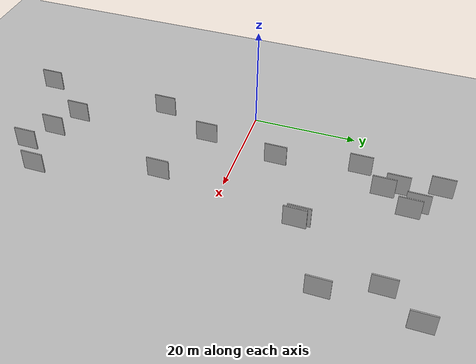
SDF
<?xml version="1.0" encoding="utf-8"?>

<sdf version="1.6">

   <world name="default">

      <gui fullscreen="0">

         <camera name="user_camera">

            <pose>-15 0 4.57585 0 0 0</pose>

            <view_controller>orbit</view_controller>

         </camera>

      </gui>

      <scene>

         <sky>

           <clouds>

             <speed>12</speed>

           </clouds>

         </sky>

         <ambient>0.4 0.4 0.4 1</ambient>

         <background>0.7 0.7 0.7 1</background>

         <shadows>1</shadows>

      </scene>

      <gravity>0 0 -9.8066</gravity>

      <magnetic_field>6e-06 2.3e-05 -4.2e-05</magnetic_field>

      <physics default="0" name="default_physics" type="ode">

         <ode>

            <solver>

               <type>quick</type>

               <iters>10</iters>

               <sor>1.0</sor>

               <use_dynamic_moi_rescaling>0</use_dynamic_moi_rescaling>

            </solver>

            <constraints>

               <cfm>0</cfm>

               <erp>0.2</erp>

               <contact_max_correcting_vel>100</contact_max_correcting_vel>

               <contact_surface_layer>0.001</contact_surface_layer>

            </constraints>

         </ode>

         <max_step_size>0.004</max_step_size>

         <real_time_factor>1</real_time_factor>

         <real_time_update_rate>250</real_time_update_rate>

      </physics>

      <light name="sun" type="directional">

         <cast_shadows>1</cast_shadows>

         <pose>0 0 10 0 0 0</pose>

         <diffuse>0.8 0.8 0.8 1</diffuse>

         <specular>0.2 0.2 0.2 1</specular>

         <attenuation>

            <range>1000</range>

            <constant>0.9</constant>

            <linear>0.01</linear>

            <quadratic>0.001</quadratic>

         </attenuation>

         <direction>-0.5 0.1 -0.9</direction>

      </light>

      <include>

         <name>ground_plane_1</name>

         <uri>model://HANNAS_ground_plane</uri>

         <pose>0 0 0  0 0 0</pose>

      </include>

      <include>

         <name>ground_plane_2</name>

         <uri>model://HANNAS_ground_plane</uri>

         <pose>100 0 0  0 0 0</pose>

      </include>

      <model name="HANNAS_wall_1">

         <static>1</static>

         <pose frame="">21.9541 -32.3000 5.0 0.000000 0.000000 1.570796</pose>

         <link name="link">

            <pose frame="">0 0 2.00 0 0 0</pose>

            <collision name="collision">

               <geometry>

                  <box>

                     <size>4.00 0.2 4.00</size>

                  </box>

               </geometry>

               <max_contacts>10</max_contacts>

               <surface>

                  <contact>

                     <ode/>

                  </contact>

                  <bounce/>

                  <friction>

                     <torsional>

                        <ode/>

                     </torsional>

                     <ode/>

                  </friction>

               </surface>

            </collision>

            <visual name="visual">

               <cast_shadows>0</cast_shadows>

               <geometry>

                  <box>

                     <size>4.00 0.2 4.00</size>

                  </box>

               </geometry>

               <material>

                  <script>

                     <uri>model://HANNAS_wall/materials/scripts</uri>

                     <uri>model://HANNAS_wall/materials/textures</uri>

                     <name>vrc/HANNAS_wall</name>

                  </script>

               </material>

            </visual>

            <self_collide>0</self_collide>

            <enable_wind>0</enable_wind>

            <kinematic>0</kinematic>

         </link>

      </model>

      <model name="HANNAS_wall_2">

         <static>1</static>

         <pose frame="">15.8614 37.1222 5.0 0.000000 0.000000 1.570796</pose>

         <link name="link">

            <pose frame="">0 0 2.00 0 0 0</pose>

            <collision name="collision">

               <geometry>

                  <box>

                     <size>4.00 0.2 4.00</size>

                  </box>

               </geometry>

               <max_contacts>10</max_contacts>

               <surface>

                  <contact>

                     <ode/>

                  </contact>

                  <bounce/>

                  <friction>

                     <torsional>

                        <ode/>

                     </torsional>

                     <ode/>

                  </friction>

               </surface>

            </collision>

            <visual name="visual">

               <cast_shadows>0</cast_shadows>

               <geometry>

                  <box>

                     <size>4.00 0.2 4.00</size>

                  </box>

               </geometry>

               <material>

                  <script>

                     <uri>model://HANNAS_wall/materials/scripts</uri>

                     <uri>model://HANNAS_wall/materials/textures</uri>

                     <name>vrc/HANNAS_wall</name>

                  </script>

               </material>

            </visual>

            <self_collide>0</self_collide>

            <enable_wind>0</enable_wind>

            <kinematic>0</kinematic>

         </link>

      </model>

      <model name="HANNAS_wall_3">

         <static>1</static>

         <pose frame="">20.9176 33.7744 5.0 0.000000 0.000000 1.570796</pose>

         <link name="link">

            <pose frame="">0 0 2.00 0 0 0</pose>

            <collision name="collision">

               <geometry>

                  <box>

                     <size>4.00 0.2 4.00</size>

                  </box>

               </geometry>

               <max_contacts>10</max_contacts>

               <surface>

                  <contact>

                     <ode/>

                  </contact>

                  <bounce/>

                  <friction>

                     <torsional>

                        <ode/>

                     </torsional>

                     <ode/>

                  </friction>

               </surface>

            </collision>

            <visual name="visual">

               <cast_shadows>0</cast_shadows>

               <geometry>

                  <box>

                     <size>4.00 0.2 4.00</size>

                  </box>

               </geometry>

               <material>

                  <script>

                     <uri>model://HANNAS_wall/materials/scripts</uri>

                     <uri>model://HANNAS_wall/materials/textures</uri>

                     <name>vrc/HANNAS_wall</name>

                  </script>

               </material>

            </visual>

            <self_collide>0</self_collide>

            <enable_wind>0</enable_wind>

            <kinematic>0</kinematic>

         </link>

      </model>

      <model name="HANNAS_wall_4">

         <static>1</static>

         <pose frame="">29.9410 16.1891 5.0 0.000000 0.000000 1.570796</pose>

         <link name="link">

            <pose frame="">0 0 2.00 0 0 0</pose>

            <collision name="collision">

               <geometry>

                  <box>

                     <size>4.00 0.2 4.00</size>

                  </box>

               </geometry>

               <max_contacts>10</max_contacts>

               <surface>

                  <contact>

                     <ode/>

                  </contact>

                  <bounce/>

                  <friction>

                     <torsional>

                        <ode/>

                     </torsional>

                     <ode/>

                  </friction>

               </surface>

            </collision>

            <visual name="visual">

               <cast_shadows>0</cast_shadows>

               <geometry>

                  <box>

                     <size>4.00 0.2 4.00</size>

                  </box>

               </geometry>

               <material>

                  <script>

                     <uri>model://HANNAS_wall/materials/scripts</uri>

                     <uri>model://HANNAS_wall/materials/textures</uri>

                     <name>vrc/HANNAS_wall</name>

                  </script>

               </material>

            </visual>

            <self_collide>0</self_collide>

            <enable_wind>0</enable_wind>

            <kinematic>0</kinematic>

         </link>

      </model>

      <model name="HANNAS_wall_5">

         <static>1</static>

         <pose frame="">26.8456 -9.4636 5.0 0.000000 0.000000 1.570796</pose>

         <link name="link">

            <pose frame="">0 0 2.00 0 0 0</pose>

            <collision name="collision">

               <geometry>

                  <box>

                     <size>4.00 0.2 4.00</size>

                  </box>

               </geometry>

               <max_contacts>10</max_contacts>

               <surface>

                  <contact>

                     <ode/>

                  </contact>

                  <bounce/>

                  <friction>

                     <torsional>

                        <ode/>

                     </torsional>

                     <ode/>

                  </friction>

               </surface>

            </collision>

            <visual name="visual">

               <cast_shadows>0</cast_shadows>

               <geometry>

                  <box>

                     <size>4.00 0.2 4.00</size>

                  </box>

               </geometry>

               <material>

                  <script>

                     <uri>model://HANNAS_wall/materials/scripts</uri>

                     <uri>model://HANNAS_wall/materials/textures</uri>

                     <name>vrc/HANNAS_wall</name>

                  </script>

               </material>

            </visual>

            <self_collide>0</self_collide>

            <enable_wind>0</enable_wind>

            <kinematic>0</kinematic>

         </link>

      </model>

      <model name="HANNAS_wall_6">

         <static>1</static>

         <pose frame="">22.5121 32.5845 5.0 0.000000 0.000000 1.570796</pose>

         <link name="link">

            <pose frame="">0 0 2.00 0 0 0</pose>

            <collision name="collision">

               <geometry>

                  <box>

                     <size>4.00 0.2 4.00</size>

                  </box>

               </geometry>

               <max_contacts>10</max_contacts>

               <surface>

                  <contact>

                     <ode/>

                  </contact>

                  <bounce/>

                  <friction>

                     <torsional>

                        <ode/>

                     </torsional>

                     <ode/>

                  </friction>

               </surface>

            </collision>

            <visual name="visual">

               <cast_shadows>0</cast_shadows>

               <geometry>

                  <box>

                     <size>4.00 0.2 4.00</size>

                  </box>

               </geometry>

               <material>

                  <script>

                     <uri>model://HANNAS_wall/materials/scripts</uri>

                     <uri>model://HANNAS_wall/materials/textures</uri>

                     <name>vrc/HANNAS_wall</name>

                  </script>

               </material>

            </visual>

            <self_collide>0</self_collide>

            <enable_wind>0</enable_wind>

            <kinematic>0</kinematic>

         </link>

      </model>

      <model name="HANNAS_wall_7">

         <static>1</static>

         <pose frame="">32.1951 -30.6162 5.0 0.000000 0.000000 1.570796</pose>

         <link name="link">

            <pose frame="">0 0 2.00 0 0 0</pose>

            <collision name="collision">

               <geometry>

                  <box>

                     <size>4.00 0.2 4.00</size>

                  </box>

               </geometry>

               <max_contacts>10</max_contacts>

               <surface>

                  <contact>

                     <ode/>

                  </contact>

                  <bounce/>

                  <friction>

                     <torsional>

                        <ode/>

                     </torsional>

                     <ode/>

                  </friction>

               </surface>

            </collision>

            <visual name="visual">

               <cast_shadows>0</cast_shadows>

               <geometry>

                  <box>

                     <size>4.00 0.2 4.00</size>

                  </box>

               </geometry>

               <material>

                  <script>

                     <uri>model://HANNAS_wall/materials/scripts</uri>

                     <uri>model://HANNAS_wall/materials/textures</uri>

                     <name>vrc/HANNAS_wall</name>

                  </script>

               </material>

            </visual>

            <self_collide>0</self_collide>

            <enable_wind>0</enable_wind>

            <kinematic>0</kinematic>

         </link>

      </model>

      <model name="HANNAS_wall_8">

         <static>1</static>

         <pose frame="">18.9069 27.8121 5.0 0.000000 0.000000 1.570796</pose>

         <link name="link">

            <pose frame="">0 0 2.00 0 0 0</pose>

            <collision name="collision">

               <geometry>

                  <box>

                     <size>4.00 0.2 4.00</size>

                  </box>

               </geometry>

               <max_contacts>10</max_contacts>

               <surface>

                  <contact>

                     <ode/>

                  </contact>

                  <bounce/>

                  <friction>

                     <torsional>

                        <ode/>

                     </torsional>

                     <ode/>

                  </friction>

               </surface>

            </collision>

            <visual name="visual">

               <cast_shadows>0</cast_shadows>

               <geometry>

                  <box>

                     <size>4.00 0.2 4.00</size>

                  </box>

               </geometry>

               <material>

                  <script>

                     <uri>model://HANNAS_wall/materials/scripts</uri>

                     <uri>model://HANNAS_wall/materials/textures</uri>

                     <name>vrc/HANNAS_wall</name>

                  </script>

               </material>

            </visual>

            <self_collide>0</self_collide>

            <enable_wind>0</enable_wind>

            <kinematic>0</kinematic>

         </link>

      </model>

      <model name="HANNAS_wall_9">

         <static>1</static>

         <pose frame="">14.8171 -4.9700 5.0 0.000000 0.000000 1.570796</pose>

         <link name="link">

            <pose frame="">0 0 2.00 0 0 0</pose>

            <collision name="collision">

               <geometry>

                  <box>

                     <size>4.00 0.2 4.00</size>

                  </box>

               </geometry>

               <max_contacts>10</max_contacts>

               <surface>

                  <contact>

                     <ode/>

                  </contact>

                  <bounce/>

                  <friction>

                     <torsional>

                        <ode/>

                     </torsional>

                     <ode/>

                  </friction>

               </surface>

            </collision>

            <visual name="visual">

               <cast_shadows>0</cast_shadows>

               <geometry>

                  <box>

                     <size>4.00 0.2 4.00</size>

                  </box>

               </geometry>

               <material>

                  <script>

                     <uri>model://HANNAS_wall/materials/scripts</uri>

                     <uri>model://HANNAS_wall/materials/textures</uri>

                     <name>vrc/HANNAS_wall</name>

                  </script>

               </material>

            </visual>

            <self_collide>0</self_collide>

            <enable_wind>0</enable_wind>

            <kinematic>0</kinematic>

         </link>

      </model>

      <model name="HANNAS_wall_10">

         <static>1</static>

         <pose frame="">16.6754 -29.9544 5.0 0.000000 0.000000 1.570796</pose>

         <link name="link">

            <pose frame="">0 0 2.00 0 0 0</pose>

            <collision name="collision">

               <geometry>

                  <box>

                     <size>4.00 0.2 4.00</size>

                  </box>

               </geometry>

               <max_contacts>10</max_contacts>

               <surface>

                  <contact>

                     <ode/>

                  </contact>

                  <bounce/>

                  <friction>

                     <torsional>

                        <ode/>

                     </torsional>

                     <ode/>

                  </friction>

               </surface>

            </collision>

            <visual name="visual">

               <cast_shadows>0</cast_shadows>

               <geometry>

                  <box>

                     <size>4.00 0.2 4.00</size>

                  </box>

               </geometry>

               <material>

                  <script>

                     <uri>model://HANNAS_wall/materials/scripts</uri>

                     <uri>model://HANNAS_wall/materials/textures</uri>

                     <name>vrc/HANNAS_wall</name>

                  </script>

               </material>

            </visual>

            <self_collide>0</self_collide>

            <enable_wind>0</enable_wind>

            <kinematic>0</kinematic>

         </link>

      </model>

      <model name="HANNAS_wall_11">

         <static>1</static>

         <pose frame="">30.5203 15.6512 5.0 0.000000 0.000000 1.570796</pose>

         <link name="link">

            <pose frame="">0 0 2.00 0 0 0</pose>

            <collision name="collision">

               <geometry>

                  <box>

                     <size>4.00 0.2 4.00</size>

                  </box>

               </geometry>

               <max_contacts>10</max_contacts>

               <surface>

                  <contact>

                     <ode/>

                  </contact>

                  <bounce/>

                  <friction>

                     <torsional>

                        <ode/>

                     </torsional>

                     <ode/>

                  </friction>

               </surface>

            </collision>

            <visual name="visual">

               <cast_shadows>0</cast_shadows>

               <geometry>

                  <box>

                     <size>4.00 0.2 4.00</size>

                  </box>

               </geometry>

               <material>

                  <script>

                     <uri>model://HANNAS_wall/materials/scripts</uri>

                     <uri>model://HANNAS_wall/materials/textures</uri>

                     <name>vrc/HANNAS_wall</name>

                  </script>

               </material>

            </visual>

            <self_collide>0</self_collide>

            <enable_wind>0</enable_wind>

            <kinematic>0</kinematic>

         </link>

      </model>

      <model name="HANNAS_wall_12">

         <static>1</static>

         <pose frame="">42.9933 22.3635 5.0 0.000000 0.000000 1.570796</pose>

         <link name="link">

            <pose frame="">0 0 2.00 0 0 0</pose>

            <collision name="collision">

               <geometry>

                  <box>

                     <size>4.00 0.2 4.00</size>

                  </box>

               </geometry>

               <max_contacts>10</max_contacts>

               <surface>

                  <contact>

                     <ode/>

                  </contact>

                  <bounce/>

                  <friction>

                     <torsional>

                        <ode/>

                     </torsional>

                     <ode/>

                  </friction>

               </surface>

            </collision>

            <visual name="visual">

               <cast_shadows>0</cast_shadows>

               <geometry>

                  <box>

                     <size>4.00 0.2 4.00</size>

                  </box>

               </geometry>

               <material>

                  <script>

                     <uri>model://HANNAS_wall/materials/scripts</uri>

                     <uri>model://HANNAS_wall/materials/textures</uri>

                     <name>vrc/HANNAS_wall</name>

                  </script>

               </material>

            </visual>

            <self_collide>0</self_collide>

            <enable_wind>0</enable_wind>

            <kinematic>0</kinematic>

         </link>

      </model>

      <model name="HANNAS_wall_13">

         <static>1</static>

         <pose frame="">16.7625 8.5440 5.0 0.000000 0.000000 1.570796</pose>

         <link name="link">

            <pose frame="">0 0 2.00 0 0 0</pose>

            <collision name="collision">

               <geometry>

                  <box>

                     <size>4.00 0.2 4.00</size>

                  </box>

               </geometry>

               <max_contacts>10</max_contacts>

               <surface>

                  <contact>

                     <ode/>

                  </contact>

                  <bounce/>

                  <friction>

                     <torsional>

                        <ode/>

                     </torsional>

                     <ode/>

                  </friction>

               </surface>

            </collision>

            <visual name="visual">

               <cast_shadows>0</cast_shadows>

               <geometry>

                  <box>

                     <size>4.00 0.2 4.00</size>

                  </box>

               </geometry>

               <material>

                  <script>

                     <uri>model://HANNAS_wall/materials/scripts</uri>

                     <uri>model://HANNAS_wall/materials/textures</uri>

                     <name>vrc/HANNAS_wall</name>

                  </script>

               </material>

            </visual>

            <self_collide>0</self_collide>

            <enable_wind>0</enable_wind>

            <kinematic>0</kinematic>

         </link>

      </model>

      <model name="HANNAS_wall_14">

         <static>1</static>

         <pose frame="">9.0680 -39.5430 5.0 0.000000 0.000000 1.570796</pose>

         <link name="link">

            <pose frame="">0 0 2.00 0 0 0</pose>

            <collision name="collision">

               <geometry>

                  <box>

                     <size>4.00 0.2 4.00</size>

                  </box>

               </geometry>

               <max_contacts>10</max_contacts>

               <surface>

                  <contact>

                     <ode/>

                  </contact>

                  <bounce/>

                  <friction>

                     <torsional>

                        <ode/>

                     </torsional>

                     <ode/>

                  </friction>

               </surface>

            </collision>

            <visual name="visual">

               <cast_shadows>0</cast_shadows>

               <geometry>

                  <box>

                     <size>4.00 0.2 4.00</size>

                  </box>

               </geometry>

               <material>

                  <script>

                     <uri>model://HANNAS_wall/materials/scripts</uri>

                     <uri>model://HANNAS_wall/materials/textures</uri>

                     <name>vrc/HANNAS_wall</name>

                  </script>

               </material>

            </visual>

            <self_collide>0</self_collide>

            <enable_wind>0</enable_wind>

            <kinematic>0</kinematic>

         </link>

      </model>

      <model name="HANNAS_wall_15">

         <static>1</static>

         <pose frame="">9.7053 -15.1556 5.0 0.000000 0.000000 1.570796</pose>

         <link name="link">

            <pose frame="">0 0 2.00 0 0 0</pose>

            <collision name="collision">

               <geometry>

                  <box>

                     <size>4.00 0.2 4.00</size>

                  </box>

               </geometry>

               <max_contacts>10</max_contacts>

               <surface>

                  <contact>

                     <ode/>

                  </contact>

                  <bounce/>

                  <friction>

                     <torsional>

                        <ode/>

                     </torsional>

                     <ode/>

                  </friction>

               </surface>

            </collision>

            <visual name="visual">

               <cast_shadows>0</cast_shadows>

               <geometry>

                  <box>

                     <size>4.00 0.2 4.00</size>

                  </box>

               </geometry>

               <material>

                  <script>

                     <uri>model://HANNAS_wall/materials/scripts</uri>

                     <uri>model://HANNAS_wall/materials/textures</uri>

                     <name>vrc/HANNAS_wall</name>

                  </script>

               </material>

            </visual>

            <self_collide>0</self_collide>

            <enable_wind>0</enable_wind>

            <kinematic>0</kinematic>

         </link>

      </model>

      <model name="HANNAS_wall_16">

         <static>1</static>

         <pose frame="">44.3182 37.4305 5.0 0.000000 0.000000 1.570796</pose>

         <link name="link">

            <pose frame="">0 0 2.00 0 0 0</pose>

            <collision name="collision">

               <geometry>

                  <box>

                     <size>4.00 0.2 4.00</size>

                  </box>

               </geometry>

               <max_contacts>10</max_contacts>

               <surface>

                  <contact>

                     <ode/>

                  </contact>

                  <bounce/>

                  <friction>

                     <torsional>

                        <ode/>

                     </torsional>

                     <ode/>

                  </friction>

               </surface>

            </collision>

            <visual name="visual">

               <cast_shadows>0</cast_shadows>

               <geometry>

                  <box>

                     <size>4.00 0.2 4.00</size>

                  </box>

               </geometry>

               <material>

                  <script>

                     <uri>model://HANNAS_wall/materials/scripts</uri>

                     <uri>model://HANNAS_wall/materials/textures</uri>

                     <name>vrc/HANNAS_wall</name>

                  </script>

               </material>

            </visual>

            <self_collide>0</self_collide>

            <enable_wind>0</enable_wind>

            <kinematic>0</kinematic>

         </link>

      </model>

      <model name="HANNAS_wall_17">

         <static>1</static>

         <pose frame="">39.7568 31.3371 5.0 0.000000 0.000000 1.570796</pose>

         <link name="link">

            <pose frame="">0 0 2.00 0 0 0</pose>

            <collision name="collision">

               <geometry>

                  <box>

                     <size>4.00 0.2 4.00</size>

                  </box>

               </geometry>

               <max_contacts>10</max_contacts>

               <surface>

                  <contact>

                     <ode/>

                  </contact>

                  <bounce/>

                  <friction>

                     <torsional>

                        <ode/>

                     </torsional>

                     <ode/>

                  </friction>

               </surface>

            </collision>

            <visual name="visual">

               <cast_shadows>0</cast_shadows>

               <geometry>

                  <box>

                     <size>4.00 0.2 4.00</size>

                  </box>

               </geometry>

               <material>

                  <script>

                     <uri>model://HANNAS_wall/materials/scripts</uri>

                     <uri>model://HANNAS_wall/materials/textures</uri>

                     <name>vrc/HANNAS_wall</name>

                  </script>

               </material>

            </visual>

            <self_collide>0</self_collide>

            <enable_wind>0</enable_wind>

            <kinematic>0</kinematic>

         </link>

      </model>

      <model name="HANNAS_wall_18">

         <static>1</static>

         <pose frame="">17.5712 29.9880 5.0 0.000000 0.000000 1.570796</pose>

         <link name="link">

            <pose frame="">0 0 2.00 0 0 0</pose>

            <collision name="collision">

               <geometry>

                  <box>

                     <size>4.00 0.2 4.00</size>

                  </box>

               </geometry>

               <max_contacts>10</max_contacts>

               <surface>

                  <contact>

                     <ode/>

                  </contact>

                  <bounce/>

                  <friction>

                     <torsional>

                        <ode/>

                     </torsional>

                     <ode/>

                  </friction>

               </surface>

            </collision>

            <visual name="visual">

               <cast_shadows>0</cast_shadows>

               <geometry>

                  <box>

                     <size>4.00 0.2 4.00</size>

                  </box>

               </geometry>

               <material>

                  <script>

                     <uri>model://HANNAS_wall/materials/scripts</uri>

                     <uri>model://HANNAS_wall/materials/textures</uri>

                     <name>vrc/HANNAS_wall</name>

                  </script>

               </material>

            </visual>

            <self_collide>0</self_collide>

            <enable_wind>0</enable_wind>

            <kinematic>0</kinematic>

         </link>

      </model>

      <model name="HANNAS_wall_19">

         <static>1</static>

         <pose frame="">14.5794 23.1910 5.0 0.000000 0.000000 1.570796</pose>

         <link name="link">

            <pose frame="">0 0 2.00 0 0 0</pose>

            <collision name="collision">

               <geometry>

                  <box>

                     <size>4.00 0.2 4.00</size>

                  </box>

               </geometry>

               <max_contacts>10</max_contacts>

               <surface>

                  <contact>

                     <ode/>

                  </contact>

                  <bounce/>

                  <friction>

                     <torsional>

                        <ode/>

                     </torsional>

                     <ode/>

                  </friction>

               </surface>

            </collision>

            <visual name="visual">

               <cast_shadows>0</cast_shadows>

               <geometry>

                  <box>

                     <size>4.00 0.2 4.00</size>

                  </box>

               </geometry>

               <material>

                  <script>

                     <uri>model://HANNAS_wall/materials/scripts</uri>

                     <uri>model://HANNAS_wall/materials/textures</uri>

                     <name>vrc/HANNAS_wall</name>

                  </script>

               </material>

            </visual>

            <self_collide>0</self_collide>

            <enable_wind>0</enable_wind>

            <kinematic>0</kinematic>

         </link>

      </model>

      <model name="HANNAS_wall_20">

         <static>1</static>

         <pose frame="">27.0443 -35.0278 5.0 0.000000 0.000000 1.570796</pose>

         <link name="link">

            <pose frame="">0 0 2.00 0 0 0</pose>

            <collision name="collision">

               <geometry>

                  <box>

                     <size>4.00 0.2 4.00</size>

                  </box>

               </geometry>

               <max_contacts>10</max_contacts>

               <surface>

                  <contact>

                     <ode/>

                  </contact>

                  <bounce/>

                  <friction>

                     <torsional>

                        <ode/>

                     </torsional>

                     <ode/>

                  </friction>

               </surface>

            </collision>

            <visual name="visual">

               <cast_shadows>0</cast_shadows>

               <geometry>

                  <box>

                     <size>4.00 0.2 4.00</size>

                  </box>

               </geometry>

               <material>

                  <script>

                     <uri>model://HANNAS_wall/materials/scripts</uri>

                     <uri>model://HANNAS_wall/materials/textures</uri>

                     <name>vrc/HANNAS_wall</name>

                  </script>

               </material>

            </visual>

            <self_collide>0</self_collide>

            <enable_wind>0</enable_wind>

            <kinematic>0</kinematic>

         </link>

      </model>

   </world>

</sdf>

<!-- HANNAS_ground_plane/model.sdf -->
<sdf version="1.4">
<model name="HANNAS_ground_plane">
  <static>true</static>
    <link name="link">
      <collision name="collision">
        <geometry>
          <plane>
            <normal>0 0 1</normal>
            <size>1000 1000</size>
          </plane>
        </geometry>
        <surface>
          <friction>
            <ode>
              <mu>100</mu>
              <mu2>50</mu2>
            </ode>
          </friction>
        </surface>
      </collision>
      <visual name="visual">
        <cast_shadows>false</cast_shadows>
        <geometry>
          <plane>
            <normal>0 0 1</normal>
            <size>1000 1000</size>
          </plane>
        </geometry>
        <material>
          <script>
            <uri>model://HANNAS_ground_plane/materials/scripts/HANNAS_ground_plane.material</uri>
	    <uri>model://HANNAS_ground_plane/materials/textures</uri>
            <name>HANNASGroundPlane/Image</name>
          </script>
        </material>
      </visual>
    </link>
  </model>
</sdf>
